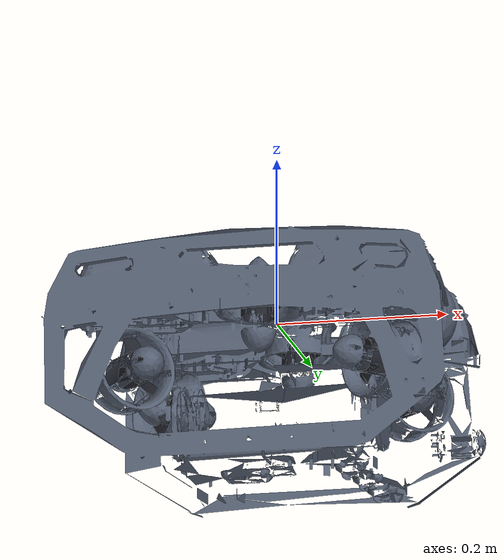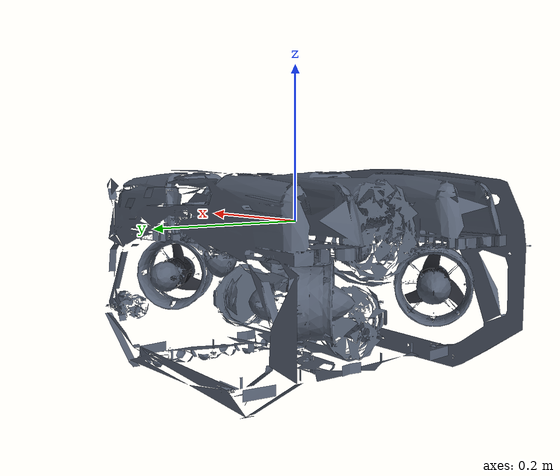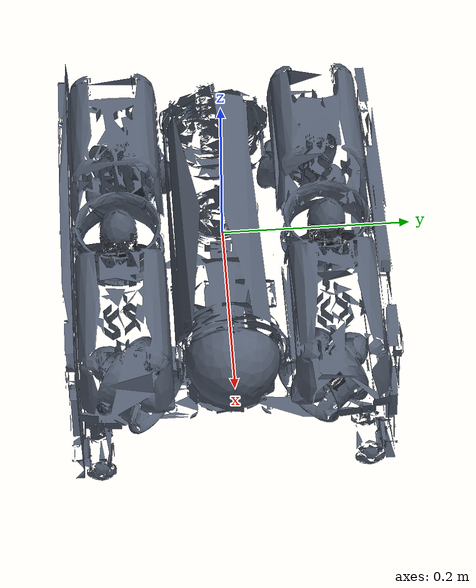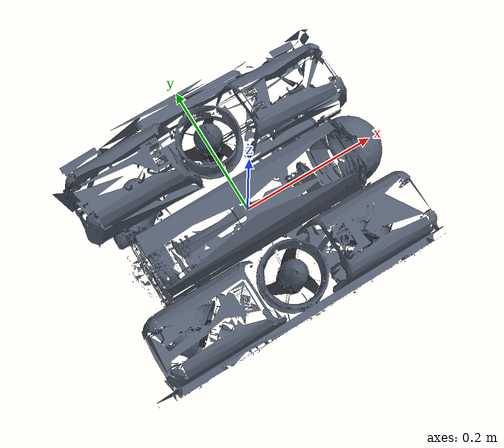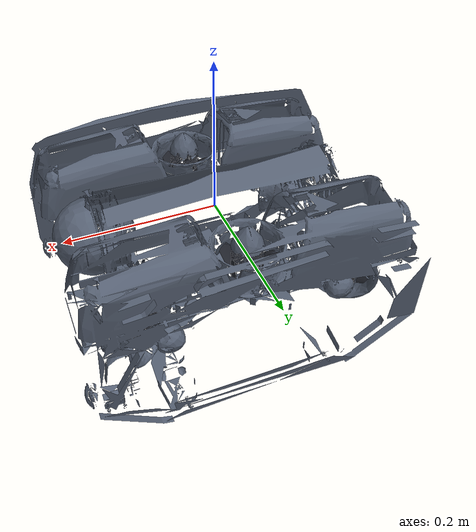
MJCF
<mujoco model="bluerov2_marinegym">
  <compiler angle="radian" meshdir="meshes" autolimits="true"/>

  <!-- density=0 viscosity=0: MuJoCo's built-in fluid model is OFF on purpose;
       all hydrodynamics are injected in the next phase. -->
  <option timestep="0.002" integrator="implicitfast" density="0" viscosity="0"/>

  <visual>
    <headlight ambient="0.6 0.6 0.62" diffuse="0.85 0.85 0.88" specular="0.25 0.25 0.25"/>
    <rgba haze="0.12 0.18 0.28 1"/>
    <scale framelength="0.25" framewidth="0.008"/>
    <global offwidth="1280" offheight="960"/>
  </visual>

  <asset>
    <mesh name="bluerov_body"     file="bluerov_body.obj"/>
    <mesh name="bluerov_thruster" file="bluerov_thruster.obj"/>
    <material name="hull"      rgba="0.33 0.37 0.44 1" specular="0.35" shininess="0.3"/>
    <material name="thruster"  rgba="0.12 0.13 0.16 1" specular="0.4" shininess="0.4"/>
    <material name="collision" rgba="0.85 0.45 0.20 0.25"/>
  </asset>

  <default>
    <default class="visual">
      <geom type="mesh" contype="0" conaffinity="0" group="2"/>
    </default>
    <default class="collision">
      <geom type="box" group="3" material="collision" contype="1" conaffinity="1"/>
    </default>
    <default class="thruster">
      <site type="cylinder" size="0.012 0.004" rgba="0.1 0.7 1 1" group="4"/>
    </default>
    <default class="ref">
      <site type="sphere" size="0.012" group="4"/>
    </default>
  </default>

  <worldbody>
    <light name="key"  pos="0.8 0.8 2.5"  dir="-0.3 -0.3 -1" directional="true"
           diffuse="0.55 0.55 0.6" specular="0.2 0.2 0.2"/>
    <light name="fill" pos="-0.8 -0.6 1.2" dir="0.4 0.3 -1" directional="true"
           diffuse="0.35 0.35 0.4" specular="0.1 0.1 0.1"/>
    <body name="base_link" pos="0 0 0">
      <freejoint name="free"/>
      <inertial pos="0 0 0" mass="11.2" diaginertia="0.30375 0.626 0.5769"/>

      <!-- ===== body visual (real MarineGym mesh, decimated) ===== -->
      <geom class="visual" mesh="bluerov_body" material="hull"/>

      <!-- ===== collision proxy (MarineGym/Isaac box collider) ===== -->
      <geom class="collision" pos="0 0 -0.05" size="0.25 0.175 0.125"/>

      <!-- ===== 6 thrusters: real T200 mesh + named mount site ===== -->
      <!-- thruster 0 -->
      <geom class="visual" mesh="bluerov_thruster" material="thruster" pos="0.1355 -0.1 -0.0725" quat="0.92388 0 0 0.382684"/>
      <site name="thruster_0" class="thruster" pos="0.1355 -0.1 -0.0725" quat="0.92388 0 0 0.382684"/>
      <!-- thruster 1 -->
      <geom class="visual" mesh="bluerov_thruster" material="thruster" pos="0.1355 0.1 -0.0725" quat="0.92388 0 0 -0.382684"/>
      <site name="thruster_1" class="thruster" pos="0.1355 0.1 -0.0725" quat="0.92388 0 0 -0.382684"/>
      <!-- thruster 2 -->
      <geom class="visual" mesh="bluerov_thruster" material="thruster" pos="-0.1475 -0.1 -0.0725" quat="0.382683 0 0 0.92388"/>
      <site name="thruster_2" class="thruster" pos="-0.1475 -0.1 -0.0725" quat="0.382683 0 0 0.92388"/>
      <!-- thruster 3 -->
      <geom class="visual" mesh="bluerov_thruster" material="thruster" pos="-0.1475 0.1 -0.0725" quat="-0.382683 0 0 0.92388"/>
      <site name="thruster_3" class="thruster" pos="-0.1475 0.1 -0.0725" quat="-0.382683 0 0 0.92388"/>
      <!-- thruster 4 -->
      <geom class="visual" mesh="bluerov_thruster" material="thruster" pos="0.0025 -0.1105 -0.005" quat="-0.707107 0 0.707107 0"/>
      <site name="thruster_4" class="thruster" pos="0.0025 -0.1105 -0.005" quat="-0.707107 0 0.707107 0"/>
      <!-- thruster 5 -->
      <geom class="visual" mesh="bluerov_thruster" material="thruster" pos="0.0025 0.1105 -0.005" quat="-0.707107 0 0.707107 0"/>
      <site name="thruster_5" class="thruster" pos="0.0025 0.1105 -0.005" quat="-0.707107 0 0.707107 0"/>

      <!-- reference site at the base_link origin -->
      <site name="base_origin" class="ref" pos="0 0 0" rgba="1 0.2 0.2 1"/>
    </body>
  </worldbody>

  <!-- ===== Phase 2: thruster force actuators (ctrl = thrust in N) ===== -->
  <actuator>
    <general name="thr0" site="thruster_0" gear="1 0 0 0 0 0" ctrlrange="-51.5507 64.1319"/>
    <general name="thr1" site="thruster_1" gear="1 0 0 0 0 0" ctrlrange="-51.5507 64.1319"/>
    <general name="thr2" site="thruster_2" gear="1 0 0 0 0 0" ctrlrange="-51.5507 64.1319"/>
    <general name="thr3" site="thruster_3" gear="1 0 0 0 0 0" ctrlrange="-51.5507 64.1319"/>
    <general name="thr4" site="thruster_4" gear="1 0 0 0 0 0" ctrlrange="-51.5507 64.1319"/>
    <general name="thr5" site="thruster_5" gear="1 0 0 0 0 0" ctrlrange="-51.5507 64.1319"/>
  </actuator>
</mujoco>
